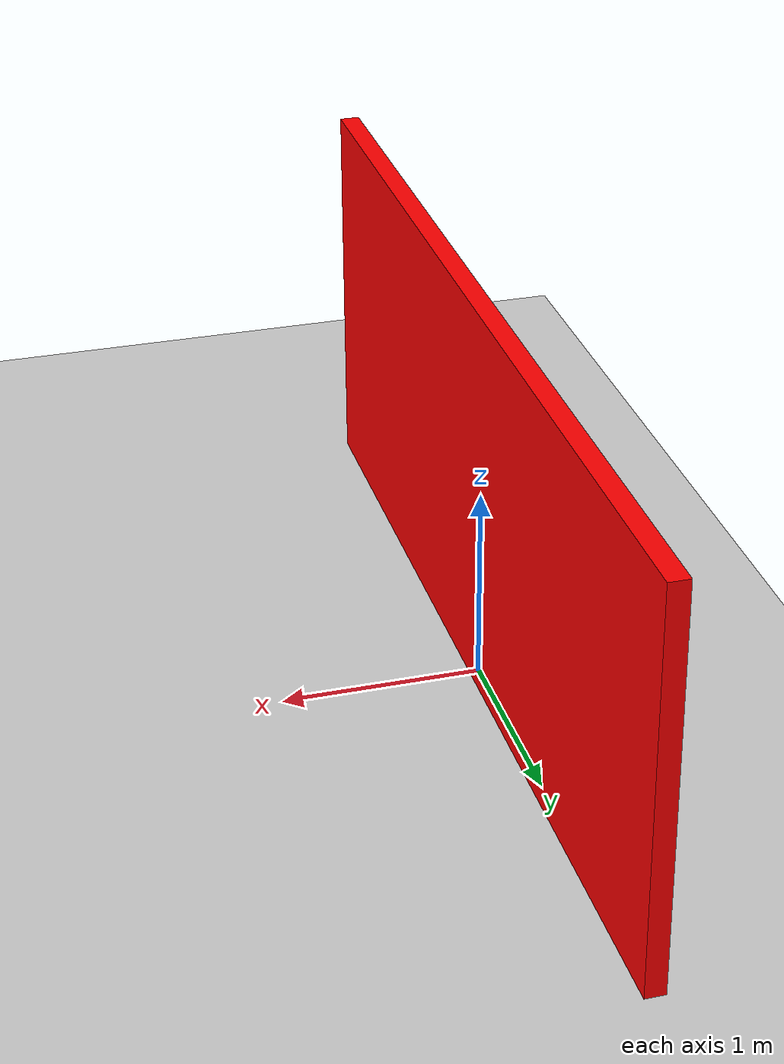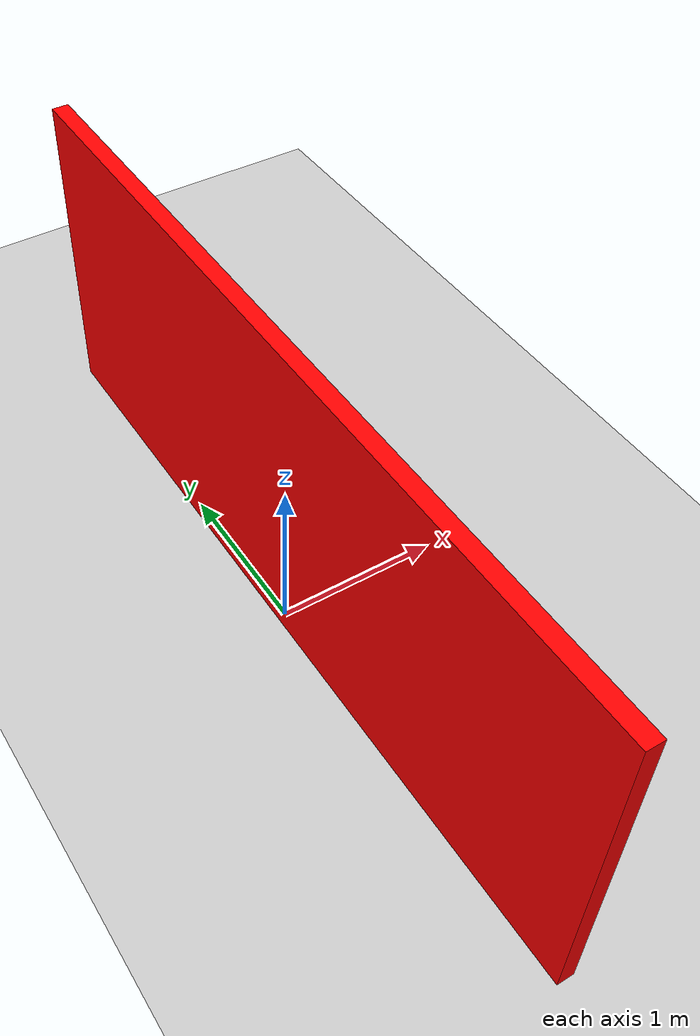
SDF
<?xml version="1.0" ?>
<sdf version="1.6">
  <world name="default">

    <include>
      <uri>model://sun</uri>
    </include>

    <include>
      <uri>model://ground_plane</uri>
    </include>

    <!-- Стена -->
    <model name="wall">
      <static>true</static>
      <link name="link">
        <collision name="collision">
          <geometry>
            <box>
              <size>0.1 5.0 2.0</size>
            </box>
          </geometry>
          <pose>0 0 1 0 0 0</pose>
        </collision>
        <visual name="visual">
          <geometry>
            <box>
              <size>0.1 5.0 2.0</size>
            </box>
          </geometry>
          <material>
            <ambient>1 0 0 1</ambient>
            <diffuse>1 0 0 1</diffuse>
          </material>
          <pose>0 0 1 0 0 0</pose>
        </visual>
      </link>
      <pose>0 0 0 0 0 0</pose>
    </model>

  </world>
</sdf>
